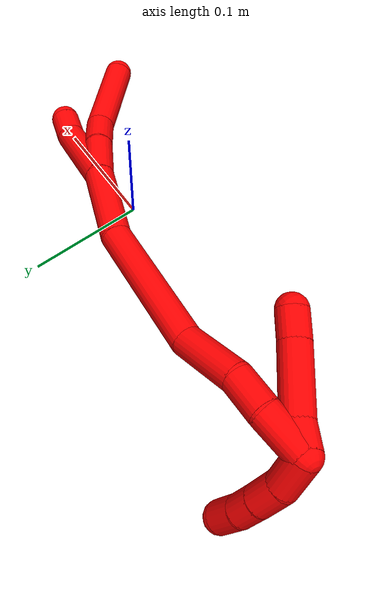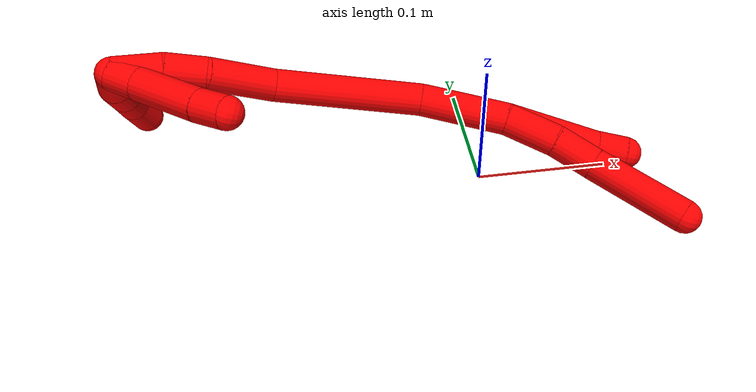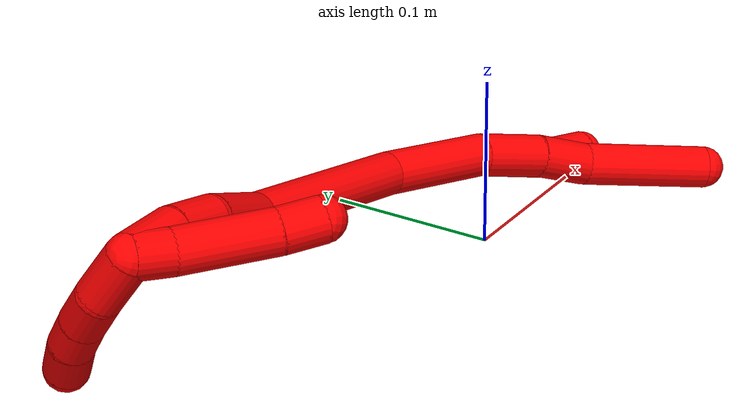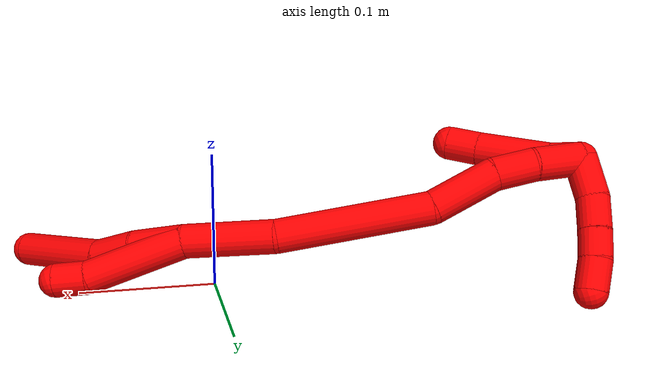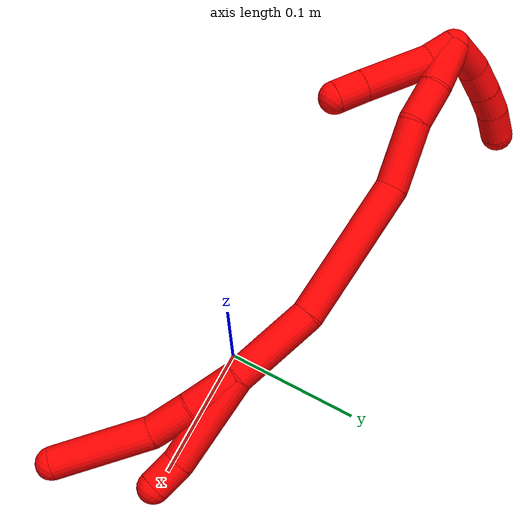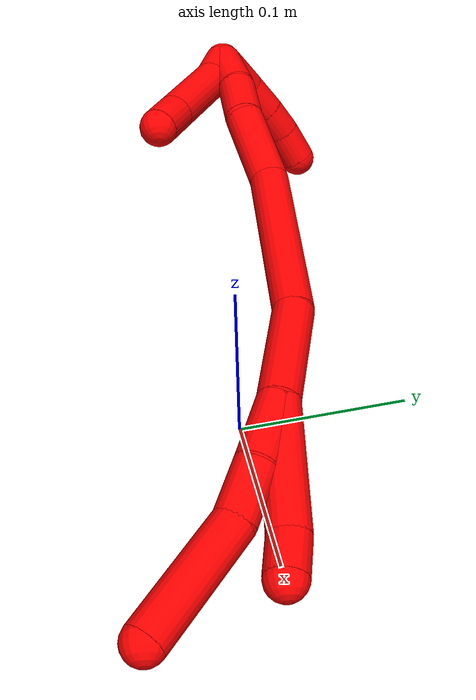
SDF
<sdf version="1.7">
 <world name="default">
  <model name="photoneo_s_sensor">
   <static>1</static>
   <pose>0 0 2 1.57079 1.57079 3.14159</pose>
   <link name="link">
    <inertial><mass>0.1</mass></inertial>
    <sensor name="sensor" type="depth">
     <update_rate>30</update_rate>
     <camera>
      <horizontal_fov>1.22</horizontal_fov>
      <image><width>1920</width><height>1200</height><format>B8G8R8</format></image>
      <clip><near>0.1</near><far>4</far></clip>
      <depth_camera><output>points</output></depth_camera>
     </camera>
     <plugin name="camera_plugin" filename="libgazebo_ros_depth_camera.so">
      <baseline>0.2</baseline>
      <alwaysOn>1</alwaysOn>
      <updateRate>0.0</updateRate>
      <cameraName>camera_ir</cameraName>
      <imageTopicName>/camera/color/image_raw</imageTopicName>
      <cameraInfoTopicName>/camera/color/camera_info</cameraInfoTopicName>
      <depthImageTopicName>/camera/depth/image_raw</depthImageTopicName>
      <depthImageCameraInfoTopicName>/camera/depth/camera_info</depthImageCameraInfoTopicName>
      <pointCloudTopicName>/camera/depth/points</pointCloudTopicName>
      <frameName>fr_optical</frameName>
      <pointCloudCutoff>0.1</pointCloudCutoff>
      <pointCloudCutoffMax>2.0</pointCloudCutoffMax>
      <distortionK1>0</distortionK1>
      <distortionK2>0</distortionK2>
      <distortionK3>0</distortionK3>
      <distortionT1>0</distortionT1>
      <distortionT2>0</distortionT2>
      <CxPrime>0</CxPrime>
      <Cx>0</Cx>
      <Cy>0</Cy>
      <focalLength>0</focalLength>
      <hackBaseline>0</hackBaseline>
     </plugin>
    </sensor>
   </link>
  </model>
  <model name="bin">
   <static>1</static>
   <link name="bottom">
    <collision name="collision-bottom">
     <pose>0 0 -0.01 0 -0 0</pose>
     <geometry><box><size>0.8 0.6 0.02</size></box></geometry>
     <surface>
      <friction><ode><mu>100</mu><mu2>100</mu2></ode></friction>
      <contact><collide_bitmask>65535</collide_bitmask></contact>
     </surface>
    </collision>
   </link>
   <link name="west_wall">
    <collision name="collision-west_wall">
     <pose>-0.41 0 0.1 0 -0 0</pose>
     <geometry><box><size>0.02 0.6 0.2</size></box></geometry>
     <surface>
      <friction><ode><mu>100</mu><mu2>100</mu2></ode></friction>
      <contact><collide_bitmask>65535</collide_bitmask></contact>
     </surface>
    </collision>
   </link>
   <link name="east_wall">
    <collision name="collision-east_wall">
     <pose>0.41 0 0.1 0 -0 0</pose>
     <geometry><box><size>0.02 0.6 0.2</size></box></geometry>
     <surface>
      <friction><ode><mu>100</mu><mu2>100</mu2></ode></friction>
      <contact><collide_bitmask>65535</collide_bitmask></contact>
     </surface>
    </collision>
   </link>
   <link name="south_wall">
    <collision name="collision-south_wall">
     <pose>0 -0.31 0.1 0 -0 0</pose>
     <geometry><box><size>0.8 0.02 0.2</size></box></geometry>
     <surface>
      <friction><ode><mu>100</mu><mu2>100</mu2></ode></friction>
      <contact><collide_bitmask>65535</collide_bitmask></contact>
     </surface>
    </collision>
   </link>
   <link name="north_wall">
    <collision name="collision-north_wall">
     <pose>0 0.31 0.1 0 -0 0</pose>
     <geometry><box><size>0.8 0.02 0.2</size></box></geometry>
     <surface>
      <friction><ode><mu>100</mu><mu2>100</mu2></ode></friction>
      <contact><collide_bitmask>65535</collide_bitmask></contact>
     </surface>
    </collision>
   </link>
  </model>
  <model name="2">
   <static>0</static>
   <link name="2">
    <collision name="collision-cylinder-e_1_2_8">
     <pose>0.000987 -0.00755 -0.018478 2.75371 0.049424 0.250366</pose>
     <geometry><cylinder><radius>0.0125</radius><length>0.039971</length></cylinder></geometry>
     <surface>
      <friction><ode><mu>1.16</mu><mu2>1.16</mu2><slip1>0</slip1><slip2>0</slip2></ode></friction>
      <contact><ode><kp>1e+06</kp><kd>1</kd><max_vel>0</max_vel><min_depth>0.001</min_depth></ode></contact>
     </surface>
    </collision>
    <visual name="visual-cylinder-e_1_2_8">
     <pose>0.000987 -0.00755 -0.018478 2.75371 0.049424 0.250366</pose>
     <geometry><cylinder><radius>0.0125</radius><length>0.039971</length></cylinder></geometry>
     <material><ambient>1 0 0 1</ambient></material>
    </visual>
    <collision name="collision-cylinder-e_2_8_9">
     <pose>0.000599 -0.021919 -0.052344 2.72444 -0.081557 -0.380871</pose>
     <geometry><cylinder><radius>0.0125</radius><length>0.033774</length></cylinder></geometry>
     <surface>
      <friction><ode><mu>1.16</mu><mu2>1.16</mu2><slip1>0</slip1><slip2>0</slip2></ode></friction>
      <contact><ode><kp>1e+06</kp><kd>1</kd><max_vel>0</max_vel><min_depth>0.001</min_depth></ode></contact>
     </surface>
    </collision>
    <visual name="visual-cylinder-e_2_8_9">
     <pose>0.000599 -0.021919 -0.052344 2.72444 -0.081557 -0.380871</pose>
     <geometry><cylinder><radius>0.0125</radius><length>0.033774</length></cylinder></geometry>
     <material><ambient>1 0 0 1</ambient></material>
    </visual>
    <collision name="collision-cylinder-e_3_9_6">
     <pose>0.002492 -0.052377 -0.097468 2.46994 0.085826 0.244808</pose>
     <geometry><cylinder><radius>0.0125</radius><length>0.076255</length></cylinder></geometry>
     <surface>
      <friction><ode><mu>1.16</mu><mu2>1.16</mu2><slip1>0</slip1><slip2>0</slip2></ode></friction>
      <contact><ode><kp>1e+06</kp><kd>1</kd><max_vel>0</max_vel><min_depth>0.001</min_depth></ode></contact>
     </surface>
    </collision>
    <visual name="visual-cylinder-e_3_9_6">
     <pose>0.002492 -0.052377 -0.097468 2.46994 0.085826 0.244808</pose>
     <geometry><cylinder><radius>0.0125</radius><length>0.076255</length></cylinder></geometry>
     <material><ambient>1 0 0 1</ambient></material>
    </visual>
    <collision name="collision-cylinder-e_1_2_10">
     <pose>-0.001305 -0.000498 -0.037721 3.12838 -0.034576 -2.41157</pose>
     <geometry><cylinder><radius>0.0125</radius><length>0.075493</length></cylinder></geometry>
     <surface>
      <friction><ode><mu>1.16</mu><mu2>1.16</mu2><slip1>0</slip1><slip2>0</slip2></ode></friction>
      <contact><ode><kp>1e+06</kp><kd>1</kd><max_vel>0</max_vel><min_depth>0.001</min_depth></ode></contact>
     </surface>
    </collision>
    <visual name="visual-cylinder-e_1_2_10">
     <pose>-0.001305 -0.000498 -0.037721 3.12838 -0.034576 -2.41157</pose>
     <geometry><cylinder><radius>0.0125</radius><length>0.075493</length></cylinder></geometry>
     <material><ambient>1 0 0 1</ambient></material>
    </visual>
    <collision name="collision-cylinder-e_2_10_5">
     <pose>-0.000426 -0.003163 -0.087302 2.96097 0.179196 1.56283</pose>
     <geometry><cylinder><radius>0.0125</radius><length>0.024507</length></cylinder></geometry>
     <surface>
      <friction><ode><mu>1.16</mu><mu2>1.16</mu2><slip1>0</slip1><slip2>0</slip2></ode></friction>
      <contact><ode><kp>1e+06</kp><kd>1</kd><max_vel>0</max_vel><min_depth>0.001</min_depth></ode></contact>
     </surface>
    </collision>
    <visual name="visual-cylinder-e_2_10_5">
     <pose>-0.000426 -0.003163 -0.087302 2.96097 0.179196 1.56283</pose>
     <geometry><cylinder><radius>0.0125</radius><length>0.024507</length></cylinder></geometry>
     <material><ambient>1 0 0 1</ambient></material>
    </visual>
    <collision name="collision-cylinder-e_1_2_11">
     <pose>-0.006527 0.007991 0.032334 -0.242277 -0.193512 0.02363</pose>
     <geometry><cylinder><radius>0.0125</radius><length>0.06788</length></cylinder></geometry>
     <surface>
      <friction><ode><mu>1.16</mu><mu2>1.16</mu2><slip1>0</slip1><slip2>0</slip2></ode></friction>
      <contact><ode><kp>1e+06</kp><kd>1</kd><max_vel>0</max_vel><min_depth>0.001</min_depth></ode></contact>
     </surface>
    </collision>
    <visual name="visual-cylinder-e_1_2_11">
     <pose>-0.006527 0.007991 0.032334 -0.242277 -0.193512 0.02363</pose>
     <geometry><cylinder><radius>0.0125</radius><length>0.06788</length></cylinder></geometry>
     <material><ambient>1 0 0 1</ambient></material>
    </visual>
    <collision name="collision-cylinder-e_2_11_12">
     <pose>-0.022951 0.014661 0.120319 0.023726 -0.175956 -0.002093</pose>
     <geometry><cylinder><radius>0.0125</radius><length>0.113079</length></cylinder></geometry>
     <surface>
      <friction><ode><mu>1.16</mu><mu2>1.16</mu2><slip1>0</slip1><slip2>0</slip2></ode></friction>
      <contact><ode><kp>1e+06</kp><kd>1</kd><max_vel>0</max_vel><min_depth>0.001</min_depth></ode></contact>
     </surface>
    </collision>
    <visual name="visual-cylinder-e_2_11_12">
     <pose>-0.022951 0.014661 0.120319 0.023726 -0.175956 -0.002093</pose>
     <geometry><cylinder><radius>0.0125</radius><length>0.113079</length></cylinder></geometry>
     <material><ambient>1 0 0 1</ambient></material>
    </visual>
    <collision name="collision-cylinder-e_3_12_13">
     <pose>-0.031141 0.006834 0.201017 0.254139 0.065865 0.008418</pose>
     <geometry><cylinder><radius>0.0125</radius><length>0.051869</length></cylinder></geometry>
     <surface>
      <friction><ode><mu>1.16</mu><mu2>1.16</mu2><slip1>0</slip1><slip2>0</slip2></ode></friction>
      <contact><ode><kp>1e+06</kp><kd>1</kd><max_vel>0</max_vel><min_depth>0.001</min_depth></ode></contact>
     </surface>
    </collision>
    <visual name="visual-cylinder-e_3_12_13">
     <pose>-0.031141 0.006834 0.201017 0.254139 0.065865 0.008418</pose>
     <geometry><cylinder><radius>0.0125</radius><length>0.051869</length></cylinder></geometry>
     <material><ambient>1 0 0 1</ambient></material>
    </visual>
    <collision name="collision-cylinder-e_4_13_14">
     <pose>-0.031557 -0.000885 0.241253 0.079703 -0.138426 -0.005528</pose>
     <geometry><cylinder><radius>0.0125</radius><length>0.030767</length></cylinder></geometry>
     <surface>
      <friction><ode><mu>1.16</mu><mu2>1.16</mu2><slip1>0</slip1><slip2>0</slip2></ode></friction>
      <contact><ode><kp>1e+06</kp><kd>1</kd><max_vel>0</max_vel><min_depth>0.001</min_depth></ode></contact>
     </surface>
    </collision>
    <visual name="visual-cylinder-e_4_13_14">
     <pose>-0.031557 -0.000885 0.241253 0.079703 -0.138426 -0.005528</pose>
     <geometry><cylinder><radius>0.0125</radius><length>0.030767</length></cylinder></geometry>
     <material><ambient>1 0 0 1</ambient></material>
    </visual>
    <collision name="collision-cylinder-e_5_14_1">
     <pose>-0.038963 -0.005379 0.273547 0.189486 -0.294509 -0.028189</pose>
     <geometry><cylinder><radius>0.0125</radius><length>0.036403</length></cylinder></geometry>
     <surface>
      <friction><ode><mu>1.16</mu><mu2>1.16</mu2><slip1>0</slip1><slip2>0</slip2></ode></friction>
      <contact><ode><kp>1e+06</kp><kd>1</kd><max_vel>0</max_vel><min_depth>0.001</min_depth></ode></contact>
     </surface>
    </collision>
    <visual name="visual-cylinder-e_5_14_1">
     <pose>-0.038963 -0.005379 0.273547 0.189486 -0.294509 -0.028189</pose>
     <geometry><cylinder><radius>0.0125</radius><length>0.036403</length></cylinder></geometry>
     <material><ambient>1 0 0 1</ambient></material>
    </visual>
    <collision name="collision-cylinder-e_1_1_15">
     <pose>-0.0564 0.000499 0.289584 -1.68703 -0.921748 1.01775</pose>
     <geometry><cylinder><radius>0.0125</radius><length>0.030511</length></cylinder></geometry>
     <surface>
      <friction><ode><mu>1.16</mu><mu2>1.16</mu2><slip1>0</slip1><slip2>0</slip2></ode></friction>
      <contact><ode><kp>1e+06</kp><kd>1</kd><max_vel>0</max_vel><min_depth>0.001</min_depth></ode></contact>
     </surface>
    </collision>
    <visual name="visual-cylinder-e_1_1_15">
     <pose>-0.0564 0.000499 0.289584 -1.68703 -0.921748 1.01775</pose>
     <geometry><cylinder><radius>0.0125</radius><length>0.030511</length></cylinder></geometry>
     <material><ambient>1 0 0 1</ambient></material>
    </visual>
    <collision name="collision-cylinder-e_2_15_16">
     <pose>-0.077179 0.017598 0.28487 -2.00116 -0.778952 1.13869</pose>
     <geometry><cylinder><radius>0.0125</radius><length>0.024555</length></cylinder></geometry>
     <surface>
      <friction><ode><mu>1.16</mu><mu2>1.16</mu2><slip1>0</slip1><slip2>0</slip2></ode></friction>
      <contact><ode><kp>1e+06</kp><kd>1</kd><max_vel>0</max_vel><min_depth>0.001</min_depth></ode></contact>
     </surface>
    </collision>
    <visual name="visual-cylinder-e_2_15_16">
     <pose>-0.077179 0.017598 0.28487 -2.00116 -0.778952 1.13869</pose>
     <geometry><cylinder><radius>0.0125</radius><length>0.024555</length></cylinder></geometry>
     <material><ambient>1 0 0 1</ambient></material>
    </visual>
    <collision name="collision-cylinder-e_3_16_17">
     <pose>-0.09335 0.031865 0.277664 -2.08336 -0.804783 1.25839</pose>
     <geometry><cylinder><radius>0.0125</radius><length>0.020943</length></cylinder></geometry>
     <surface>
      <friction><ode><mu>1.16</mu><mu2>1.16</mu2><slip1>0</slip1><slip2>0</slip2></ode></friction>
      <contact><ode><kp>1e+06</kp><kd>1</kd><max_vel>0</max_vel><min_depth>0.001</min_depth></ode></contact>
     </surface>
    </collision>
    <visual name="visual-cylinder-e_3_16_17">
     <pose>-0.09335 0.031865 0.277664 -2.08336 -0.804783 1.25839</pose>
     <geometry><cylinder><radius>0.0125</radius><length>0.020943</length></cylinder></geometry>
     <material><ambient>1 0 0 1</ambient></material>
    </visual>
    <collision name="collision-cylinder-e_4_17_4">
     <pose>-0.109339 0.044546 0.268425 -2.30015 -0.780631 1.48699</pose>
     <geometry><cylinder><radius>0.0125</radius><length>0.023991</length></cylinder></geometry>
     <surface>
      <friction><ode><mu>1.16</mu><mu2>1.16</mu2><slip1>0</slip1><slip2>0</slip2></ode></friction>
      <contact><ode><kp>1e+06</kp><kd>1</kd><max_vel>0</max_vel><min_depth>0.001</min_depth></ode></contact>
     </surface>
    </collision>
    <visual name="visual-cylinder-e_4_17_4">
     <pose>-0.109339 0.044546 0.268425 -2.30015 -0.780631 1.48699</pose>
     <geometry><cylinder><radius>0.0125</radius><length>0.023991</length></cylinder></geometry>
     <material><ambient>1 0 0 1</ambient></material>
    </visual>
    <collision name="collision-cylinder-e_1_1_18">
     <pose>-0.042517 -0.012931 0.280689 2.73659 0.158232 0.73702</pose>
     <geometry><cylinder><radius>0.0125</radius><length>0.021956</length></cylinder></geometry>
     <surface>
      <friction><ode><mu>1.16</mu><mu2>1.16</mu2><slip1>0</slip1><slip2>0</slip2></ode></friction>
      <contact><ode><kp>1e+06</kp><kd>1</kd><max_vel>0</max_vel><min_depth>0.001</min_depth></ode></contact>
     </surface>
    </collision>
    <visual name="visual-cylinder-e_1_1_18">
     <pose>-0.042517 -0.012931 0.280689 2.73659 0.158232 0.73702</pose>
     <geometry><cylinder><radius>0.0125</radius><length>0.021956</length></cylinder></geometry>
     <material><ambient>1 0 0 1</ambient></material>
    </visual>
    <collision name="collision-cylinder-e_2_18_19">
     <pose>-0.033462 -0.03146 0.248693 2.56728 0.272184 0.868372</pose>
     <geometry><cylinder><radius>0.0125</radius><length>0.054493</length></cylinder></geometry>
     <surface>
      <friction><ode><mu>1.16</mu><mu2>1.16</mu2><slip1>0</slip1><slip2>0</slip2></ode></friction>
      <contact><ode><kp>1e+06</kp><kd>1</kd><max_vel>0</max_vel><min_depth>0.001</min_depth></ode></contact>
     </surface>
    </collision>
    <visual name="visual-cylinder-e_2_18_19">
     <pose>-0.033462 -0.03146 0.248693 2.56728 0.272184 0.868372</pose>
     <geometry><cylinder><radius>0.0125</radius><length>0.054493</length></cylinder></geometry>
     <material><ambient>1 0 0 1</ambient></material>
    </visual>
    <collision name="collision-cylinder-e_3_19_3">
     <pose>-0.022207 -0.051382 0.217114 2.60602 0.340335 1.11899</pose>
     <geometry><cylinder><radius>0.0125</radius><length>0.023551</length></cylinder></geometry>
     <surface>
      <friction><ode><mu>1.16</mu><mu2>1.16</mu2><slip1>0</slip1><slip2>0</slip2></ode></friction>
      <contact><ode><kp>1e+06</kp><kd>1</kd><max_vel>0</max_vel><min_depth>0.001</min_depth></ode></contact>
     </surface>
    </collision>
    <visual name="visual-cylinder-e_3_19_3">
     <pose>-0.022207 -0.051382 0.217114 2.60602 0.340335 1.11899</pose>
     <geometry><cylinder><radius>0.0125</radius><length>0.023551</length></cylinder></geometry>
     <material><ambient>1 0 0 1</ambient></material>
    </visual>
    <collision name="collision-sphere-3">
     <pose>-0.018276 -0.057046 0.207568 0 -0 0</pose>
     <geometry><sphere><radius>0.0125</radius></sphere></geometry>
     <surface>
      <friction><ode><mu>1.16</mu><mu2>1.16</mu2><slip1>0</slip1><slip2>0</slip2></ode></friction>
      <contact><ode><kp>1e+06</kp><kd>1</kd><max_vel>0</max_vel><min_depth>0.001</min_depth></ode></contact>
     </surface>
    </collision>
    <visual name="visual-sphere-3">
     <pose>-0.018276 -0.057046 0.207568 0 -0 0</pose>
     <geometry><sphere><radius>0.0125</radius></sphere></geometry>
     <material><ambient>1 0 0 1</ambient></material>
    </visual>
    <collision name="collision-sphere-19">
     <pose>-0.026137 -0.045717 0.22666 0 -0 0</pose>
     <geometry><sphere><radius>0.0125</radius></sphere></geometry>
     <surface>
      <friction><ode><mu>1.16</mu><mu2>1.16</mu2><slip1>0</slip1><slip2>0</slip2></ode></friction>
      <contact><ode><kp>1e+06</kp><kd>1</kd><max_vel>0</max_vel><min_depth>0.001</min_depth></ode></contact>
     </surface>
    </collision>
    <visual name="visual-sphere-19">
     <pose>-0.026137 -0.045717 0.22666 0 -0 0</pose>
     <geometry><sphere><radius>0.0125</radius></sphere></geometry>
     <material><ambient>1 0 0 1</ambient></material>
    </visual>
    <collision name="collision-sphere-5">
     <pose>0.001758 -0.005329 -0.099164 0 -0 0</pose>
     <geometry><sphere><radius>0.0125</radius></sphere></geometry>
     <surface>
      <friction><ode><mu>1.16</mu><mu2>1.16</mu2><slip1>0</slip1><slip2>0</slip2></ode></friction>
      <contact><ode><kp>1e+06</kp><kd>1</kd><max_vel>0</max_vel><min_depth>0.001</min_depth></ode></contact>
     </surface>
    </collision>
    <visual name="visual-sphere-5">
     <pose>0.001758 -0.005329 -0.099164 0 -0 0</pose>
     <geometry><sphere><radius>0.0125</radius></sphere></geometry>
     <material><ambient>1 0 0 1</ambient></material>
    </visual>
    <collision name="collision-sphere-10">
     <pose>-0.00261 -0.000997 -0.075441 0 -0 0</pose>
     <geometry><sphere><radius>0.0125</radius></sphere></geometry>
     <surface>
      <friction><ode><mu>1.16</mu><mu2>1.16</mu2><slip1>0</slip1><slip2>0</slip2></ode></friction>
      <contact><ode><kp>1e+06</kp><kd>1</kd><max_vel>0</max_vel><min_depth>0.001</min_depth></ode></contact>
     </surface>
    </collision>
    <visual name="visual-sphere-10">
     <pose>-0.00261 -0.000997 -0.075441 0 -0 0</pose>
     <geometry><sphere><radius>0.0125</radius></sphere></geometry>
     <material><ambient>1 0 0 1</ambient></material>
    </visual>
    <collision name="collision-sphere-6">
     <pose>0.00576 -0.076015 -0.127204 0 -0 0</pose>
     <geometry><sphere><radius>0.0125</radius></sphere></geometry>
     <surface>
      <friction><ode><mu>1.16</mu><mu2>1.16</mu2><slip1>0</slip1><slip2>0</slip2></ode></friction>
      <contact><ode><kp>1e+06</kp><kd>1</kd><max_vel>0</max_vel><min_depth>0.001</min_depth></ode></contact>
     </surface>
    </collision>
    <visual name="visual-sphere-6">
     <pose>0.00576 -0.076015 -0.127204 0 -0 0</pose>
     <geometry><sphere><radius>0.0125</radius></sphere></geometry>
     <material><ambient>1 0 0 1</ambient></material>
    </visual>
    <collision name="collision-sphere-9">
     <pose>-0.000777 -0.028738 -0.067732 0 -0 0</pose>
     <geometry><sphere><radius>0.0125</radius></sphere></geometry>
     <surface>
      <friction><ode><mu>1.16</mu><mu2>1.16</mu2><slip1>0</slip1><slip2>0</slip2></ode></friction>
      <contact><ode><kp>1e+06</kp><kd>1</kd><max_vel>0</max_vel><min_depth>0.001</min_depth></ode></contact>
     </surface>
    </collision>
    <visual name="visual-sphere-9">
     <pose>-0.000777 -0.028738 -0.067732 0 -0 0</pose>
     <geometry><sphere><radius>0.0125</radius></sphere></geometry>
     <material><ambient>1 0 0 1</ambient></material>
    </visual>
    <collision name="collision-sphere-2">
     <geometry><sphere><radius>0.0125</radius></sphere></geometry>
     <surface>
      <friction><ode><mu>1.16</mu><mu2>1.16</mu2><slip1>0</slip1><slip2>0</slip2></ode></friction>
      <contact><ode><kp>1e+06</kp><kd>1</kd><max_vel>0</max_vel><min_depth>0.001</min_depth></ode></contact>
     </surface>
    </collision>
    <visual name="visual-sphere-2">
     <geometry><sphere><radius>0.0125</radius></sphere></geometry>
     <material><ambient>1 0 0 1</ambient></material>
    </visual>
    <collision name="collision-sphere-8">
     <pose>0.001975 -0.0151 -0.036957 0 -0 0</pose>
     <geometry><sphere><radius>0.0125</radius></sphere></geometry>
     <surface>
      <friction><ode><mu>1.16</mu><mu2>1.16</mu2><slip1>0</slip1><slip2>0</slip2></ode></friction>
      <contact><ode><kp>1e+06</kp><kd>1</kd><max_vel>0</max_vel><min_depth>0.001</min_depth></ode></contact>
     </surface>
    </collision>
    <visual name="visual-sphere-8">
     <pose>0.001975 -0.0151 -0.036957 0 -0 0</pose>
     <geometry><sphere><radius>0.0125</radius></sphere></geometry>
     <material><ambient>1 0 0 1</ambient></material>
    </visual>
    <collision name="collision-sphere-11">
     <pose>-0.013054 0.015981 0.064668 0 -0 0</pose>
     <geometry><sphere><radius>0.0125</radius></sphere></geometry>
     <surface>
      <friction><ode><mu>1.16</mu><mu2>1.16</mu2><slip1>0</slip1><slip2>0</slip2></ode></friction>
      <contact><ode><kp>1e+06</kp><kd>1</kd><max_vel>0</max_vel><min_depth>0.001</min_depth></ode></contact>
     </surface>
    </collision>
    <visual name="visual-sphere-11">
     <pose>-0.013054 0.015981 0.064668 0 -0 0</pose>
     <geometry><sphere><radius>0.0125</radius></sphere></geometry>
     <material><ambient>1 0 0 1</ambient></material>
    </visual>
    <collision name="collision-sphere-12">
     <pose>-0.032848 0.01334 0.17597 0 -0 0</pose>
     <geometry><sphere><radius>0.0125</radius></sphere></geometry>
     <surface>
      <friction><ode><mu>1.16</mu><mu2>1.16</mu2><slip1>0</slip1><slip2>0</slip2></ode></friction>
      <contact><ode><kp>1e+06</kp><kd>1</kd><max_vel>0</max_vel><min_depth>0.001</min_depth></ode></contact>
     </surface>
    </collision>
    <visual name="visual-sphere-12">
     <pose>-0.032848 0.01334 0.17597 0 -0 0</pose>
     <geometry><sphere><radius>0.0125</radius></sphere></geometry>
     <material><ambient>1 0 0 1</ambient></material>
    </visual>
    <collision name="collision-sphere-13">
     <pose>-0.029434 0.000328 0.226065 0 -0 0</pose>
     <geometry><sphere><radius>0.0125</radius></sphere></geometry>
     <surface>
      <friction><ode><mu>1.16</mu><mu2>1.16</mu2><slip1>0</slip1><slip2>0</slip2></ode></friction>
      <contact><ode><kp>1e+06</kp><kd>1</kd><max_vel>0</max_vel><min_depth>0.001</min_depth></ode></contact>
     </surface>
    </collision>
    <visual name="visual-sphere-13">
     <pose>-0.029434 0.000328 0.226065 0 -0 0</pose>
     <geometry><sphere><radius>0.0125</radius></sphere></geometry>
     <material><ambient>1 0 0 1</ambient></material>
    </visual>
    <collision name="collision-sphere-14">
     <pose>-0.03368 -0.002098 0.256441 0 -0 0</pose>
     <geometry><sphere><radius>0.0125</radius></sphere></geometry>
     <surface>
      <friction><ode><mu>1.16</mu><mu2>1.16</mu2><slip1>0</slip1><slip2>0</slip2></ode></friction>
      <contact><ode><kp>1e+06</kp><kd>1</kd><max_vel>0</max_vel><min_depth>0.001</min_depth></ode></contact>
     </surface>
    </collision>
    <visual name="visual-sphere-14">
     <pose>-0.03368 -0.002098 0.256441 0 -0 0</pose>
     <geometry><sphere><radius>0.0125</radius></sphere></geometry>
     <material><ambient>1 0 0 1</ambient></material>
    </visual>
    <collision name="collision-sphere-1">
     <pose>-0.044247 -0.00866 0.290653 0 -0 0</pose>
     <geometry><sphere><radius>0.0125</radius></sphere></geometry>
     <surface>
      <friction><ode><mu>1.16</mu><mu2>1.16</mu2><slip1>0</slip1><slip2>0</slip2></ode></friction>
      <contact><ode><kp>1e+06</kp><kd>1</kd><max_vel>0</max_vel><min_depth>0.001</min_depth></ode></contact>
     </surface>
    </collision>
    <visual name="visual-sphere-1">
     <pose>-0.044247 -0.00866 0.290653 0 -0 0</pose>
     <geometry><sphere><radius>0.0125</radius></sphere></geometry>
     <material><ambient>1 0 0 1</ambient></material>
    </visual>
    <collision name="collision-sphere-18">
     <pose>-0.040787 -0.017203 0.270726 0 -0 0</pose>
     <geometry><sphere><radius>0.0125</radius></sphere></geometry>
     <surface>
      <friction><ode><mu>1.16</mu><mu2>1.16</mu2><slip1>0</slip1><slip2>0</slip2></ode></friction>
      <contact><ode><kp>1e+06</kp><kd>1</kd><max_vel>0</max_vel><min_depth>0.001</min_depth></ode></contact>
     </surface>
    </collision>
    <visual name="visual-sphere-18">
     <pose>-0.040787 -0.017203 0.270726 0 -0 0</pose>
     <geometry><sphere><radius>0.0125</radius></sphere></geometry>
     <material><ambient>1 0 0 1</ambient></material>
    </visual>
    <collision name="collision-sphere-15">
     <pose>-0.068553 0.009657 0.288515 0 -0 0</pose>
     <geometry><sphere><radius>0.0125</radius></sphere></geometry>
     <surface>
      <friction><ode><mu>1.16</mu><mu2>1.16</mu2><slip1>0</slip1><slip2>0</slip2></ode></friction>
      <contact><ode><kp>1e+06</kp><kd>1</kd><max_vel>0</max_vel><min_depth>0.001</min_depth></ode></contact>
     </surface>
    </collision>
    <visual name="visual-sphere-15">
     <pose>-0.068553 0.009657 0.288515 0 -0 0</pose>
     <geometry><sphere><radius>0.0125</radius></sphere></geometry>
     <material><ambient>1 0 0 1</ambient></material>
    </visual>
    <collision name="collision-sphere-16">
     <pose>-0.085804 0.025538 0.281224 0 -0 0</pose>
     <geometry><sphere><radius>0.0125</radius></sphere></geometry>
     <surface>
      <friction><ode><mu>1.16</mu><mu2>1.16</mu2><slip1>0</slip1><slip2>0</slip2></ode></friction>
      <contact><ode><kp>1e+06</kp><kd>1</kd><max_vel>0</max_vel><min_depth>0.001</min_depth></ode></contact>
     </surface>
    </collision>
    <visual name="visual-sphere-16">
     <pose>-0.085804 0.025538 0.281224 0 -0 0</pose>
     <geometry><sphere><radius>0.0125</radius></sphere></geometry>
     <material><ambient>1 0 0 1</ambient></material>
    </visual>
    <collision name="collision-sphere-17">
     <pose>-0.100897 0.038192 0.274104 0 -0 0</pose>
     <geometry><sphere><radius>0.0125</radius></sphere></geometry>
     <surface>
      <friction><ode><mu>1.16</mu><mu2>1.16</mu2><slip1>0</slip1><slip2>0</slip2></ode></friction>
      <contact><ode><kp>1e+06</kp><kd>1</kd><max_vel>0</max_vel><min_depth>0.001</min_depth></ode></contact>
     </surface>
    </collision>
    <visual name="visual-sphere-17">
     <pose>-0.100897 0.038192 0.274104 0 -0 0</pose>
     <geometry><sphere><radius>0.0125</radius></sphere></geometry>
     <material><ambient>1 0 0 1</ambient></material>
    </visual>
    <collision name="collision-sphere-4">
     <pose>-0.11778 0.050901 0.262745 0 -0 0</pose>
     <geometry><sphere><radius>0.0125</radius></sphere></geometry>
     <surface>
      <friction><ode><mu>1.16</mu><mu2>1.16</mu2><slip1>0</slip1><slip2>0</slip2></ode></friction>
      <contact><ode><kp>1e+06</kp><kd>1</kd><max_vel>0</max_vel><min_depth>0.001</min_depth></ode></contact>
     </surface>
    </collision>
    <visual name="visual-sphere-4">
     <pose>-0.11778 0.050901 0.262745 0 -0 0</pose>
     <geometry><sphere><radius>0.0125</radius></sphere></geometry>
     <material><ambient>1 0 0 1</ambient></material>
    </visual>
    <inertial>
     <pose>-0.024502 -0.005126 0.108794 0 -0 0</pose>
     <mass>0.75</mass>
     <inertia>
      <ixx>0.000208</ixx>
      <ixy>0</ixy>
      <ixz>0</ixz>
      <iyy>0.000161</iyy>
      <iyz>0</iyz>
      <izz>5.9e-05</izz>
     </inertia>
    </inertial>
   </link>
   <pose>0.02355 0.017463 0.041254 -0.229276 -1.22863 0.098883</pose>
  </model>
 </world>
</sdf>
